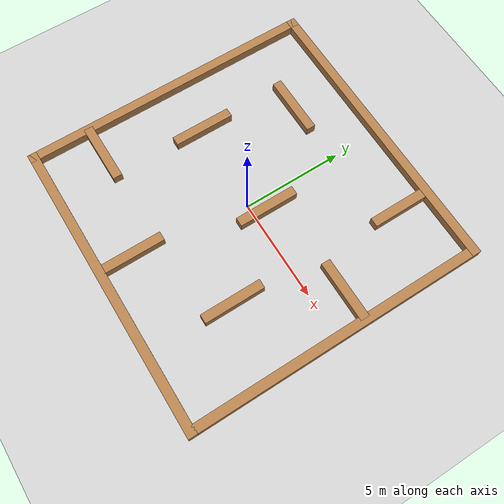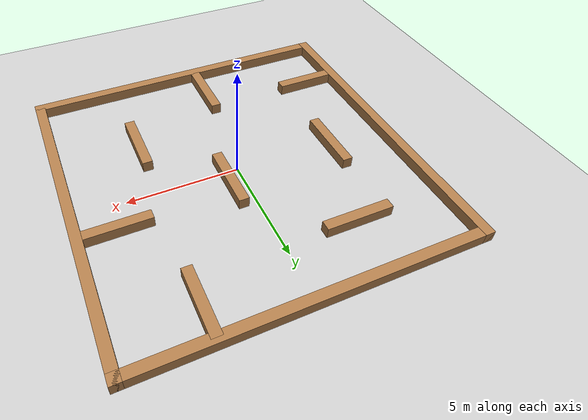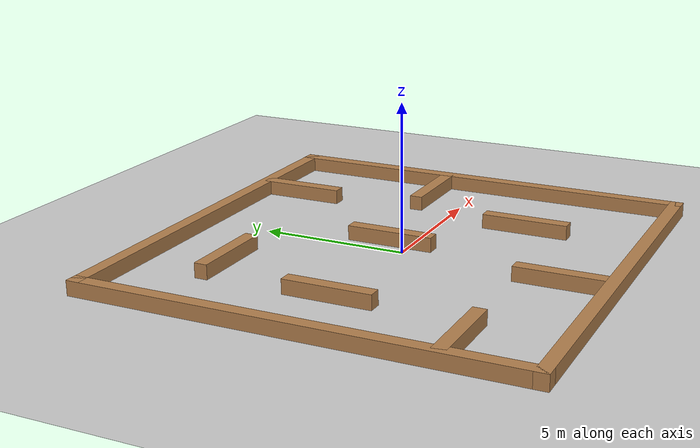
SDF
<sdf version="1.7">
 <world name="default">
  <light name="sun" type="directional">
   <pose>0 0 10 0 -0 0</pose>
   <diffuse>0.8 0.8 0.8 1</diffuse>
   <specular>0.2 0.2 0.2 1</specular>
   <attenuation>
    <range>1000</range>
    <constant>0.9</constant>
    <linear>0.01</linear>
    <quadratic>0.001</quadratic>
   </attenuation>
   <direction>-0.5 0.1 -0.9</direction>
   <spot><inner_angle>0</inner_angle><outer_angle>0</outer_angle><falloff>0</falloff></spot>
  </light>
  <model name="ground_plane">
   <static>1</static>
   <link name="link">
    <collision name="collision">
     <geometry><plane><normal>0 0 1</normal><size>300 300</size></plane></geometry>
     <surface><friction><ode><mu>15</mu><mu2>15</mu2></ode></friction></surface>
    </collision>
    <visual name="visual">
     <cast_shadows>0</cast_shadows>
     <geometry><plane><normal>0 0 1</normal><size>300 300</size></plane></geometry>
     <material>
      <script><uri>file://media/materials/scripts/gazebo.material</uri><name>Gazebo/Grey</name></script>
     </material>
    </visual>
   </link>
  </model>
  <physics type="ode">
   <max_step_size>0.01</max_step_size>
   <real_time_factor>1.0</real_time_factor>
   <real_time_update_rate>120</real_time_update_rate>
   <gravity>0 0 -9.8</gravity>
  </physics>
  <model name="turtlebot3_plaza">
   <link name="Wall_0">
    <collision name="Wall_0_Collision">
     <geometry><box><size>15 0.44999999999999996 0.5</size></box></geometry>
     <pose>0 0 0.25 0 -0 0</pose>
    </collision>
    <visual name="Wall_0_Visual">
     <pose>0 0 0.25 0 -0 0</pose>
     <geometry><box><size>15 0.44999999999999996 0.5</size></box></geometry>
     <material>
      <script><uri>file://media/materials/scripts/gazebo.material</uri><name>Gazebo/Wood</name></script>
      <ambient>1 1 1 1</ambient>
     </material>
    </visual>
    <pose>-7.2749999999999995 0 0 0 -0 1.5708</pose>
   </link>
   <link name="Wall_11">
    <collision name="Wall_11_Collision">
     <geometry><box><size>3 0.44999999999999996 0.5</size></box></geometry>
     <pose>0 0 0.25 0 -0 0</pose>
    </collision>
    <visual name="Wall_11_Visual">
     <pose>0 0 0.25 0 -0 0</pose>
     <geometry><box><size>3 0.44999999999999996 0.5</size></box></geometry>
     <material>
      <script><uri>file://media/materials/scripts/gazebo.material</uri><name>Gazebo/Wood</name></script>
      <ambient>1 1 1 1</ambient>
     </material>
    </visual>
    <pose>-5.811 -4.401 0 0 -0 0</pose>
   </link>
   <link name="Wall_13">
    <collision name="Wall_13_Collision">
     <geometry><box><size>3 0.44999999999999996 0.5</size></box></geometry>
     <pose>0 0 0.25 0 -0 0</pose>
    </collision>
    <visual name="Wall_13_Visual">
     <pose>0 0 0.25 0 -0 0</pose>
     <geometry><box><size>3 0.44999999999999996 0.5</size></box></geometry>
     <material>
      <script><uri>file://media/materials/scripts/gazebo.material</uri><name>Gazebo/Wood</name></script>
      <ambient>1 1 1 1</ambient>
     </material>
    </visual>
    <pose>-0.66 -5.598000000000001 0 0 0 -1.5708</pose>
   </link>
   <link name="Wall_15">
    <collision name="Wall_15_Collision">
     <geometry><box><size>3 0.44999999999999996 0.5</size></box></geometry>
     <pose>0 0 0.25 0 -0 0</pose>
    </collision>
    <visual name="Wall_15_Visual">
     <pose>0 0 0.25 0 -0 0</pose>
     <geometry><box><size>3 0.44999999999999996 0.5</size></box></geometry>
     <material>
      <script><uri>file://media/materials/scripts/gazebo.material</uri><name>Gazebo/Wood</name></script>
      <ambient>1 1 1 1</ambient>
     </material>
    </visual>
    <pose>3.585 -3.0060000000000002 0 0 -0 1.5708</pose>
   </link>
   <link name="Wall_17">
    <collision name="Wall_17_Collision">
     <geometry><box><size>3 0.44999999999999996 0.5</size></box></geometry>
     <pose>0 0 0.25 0 -0 0</pose>
    </collision>
    <visual name="Wall_17_Visual">
     <pose>0 0 0.25 0 -0 0</pose>
     <geometry><box><size>3 0.44999999999999996 0.5</size></box></geometry>
     <material>
      <script><uri>file://media/materials/scripts/gazebo.material</uri><name>Gazebo/Wood</name></script>
      <ambient>1 1 1 1</ambient>
     </material>
    </visual>
    <pose>3.864 5.79 0 0 0 -1.5708</pose>
   </link>
   <link name="Wall_19">
    <collision name="Wall_19_Collision">
     <geometry><box><size>3 0.44999999999999996 0.5</size></box></geometry>
     <pose>0 0 0.25 0 -0 0</pose>
    </collision>
    <visual name="Wall_19_Visual">
     <pose>0 0 0.25 0 -0 0</pose>
     <geometry><box><size>3 0.44999999999999996 0.5</size></box></geometry>
     <material>
      <script><uri>file://media/materials/scripts/gazebo.material</uri><name>Gazebo/Wood</name></script>
      <ambient>1 1 1 1</ambient>
     </material>
    </visual>
    <pose>5.733840000000001 1.3896 0 0 -0 0</pose>
   </link>
   <link name="Wall_2">
    <collision name="Wall_2_Collision">
     <geometry><box><size>15 0.44999999999999996 0.5</size></box></geometry>
     <pose>0 0 0.25 0 -0 0</pose>
    </collision>
    <visual name="Wall_2_Visual">
     <pose>0 0 0.25 0 -0 0</pose>
     <geometry><box><size>15 0.44999999999999996 0.5</size></box></geometry>
     <material>
      <script><uri>file://media/materials/scripts/gazebo.material</uri><name>Gazebo/Wood</name></script>
      <ambient>1 1 1 1</ambient>
     </material>
    </visual>
    <pose>0 7.2749999999999995 0 0 -0 0</pose>
   </link>
   <link name="Wall_21">
    <collision name="Wall_21_Collision">
     <geometry><box><size>3 0.44999999999999996 0.5</size></box></geometry>
     <pose>0 0 0.25 0 -0 0</pose>
    </collision>
    <visual name="Wall_21_Visual">
     <pose>0 0 0.25 0 -0 0</pose>
     <geometry><box><size>3 0.44999999999999996 0.5</size></box></geometry>
     <material>
      <script><uri>file://media/materials/scripts/gazebo.material</uri><name>Gazebo/Wood</name></script>
      <ambient>1 1 1 1</ambient>
     </material>
    </visual>
    <pose>0.612 0.645 0 0 0 -1.5708</pose>
   </link>
   <link name="Wall_3">
    <collision name="Wall_3_Collision">
     <geometry><box><size>15 0.44999999999999996 0.5</size></box></geometry>
     <pose>0 0 0.25 0 -0 0</pose>
    </collision>
    <visual name="Wall_3_Visual">
     <pose>0 0 0.25 0 -0 0</pose>
     <geometry><box><size>15 0.44999999999999996 0.5</size></box></geometry>
     <material>
      <script><uri>file://media/materials/scripts/gazebo.material</uri><name>Gazebo/Wood</name></script>
      <ambient>1 1 1 1</ambient>
     </material>
    </visual>
    <pose>7.2749999999999995 0 0 0 0 -1.5708</pose>
   </link>
   <link name="Wall_4">
    <collision name="Wall_4_Collision">
     <geometry><box><size>15 0.44999999999999996 0.5</size></box></geometry>
     <pose>0 0 0.25 0 -0 0</pose>
    </collision>
    <visual name="Wall_4_Visual">
     <pose>0 0 0.25 0 -0 0</pose>
     <geometry><box><size>15 0.44999999999999996 0.5</size></box></geometry>
     <material>
      <script><uri>file://media/materials/scripts/gazebo.material</uri><name>Gazebo/Wood</name></script>
      <ambient>1 1 1 1</ambient>
     </material>
    </visual>
    <pose>0 -7.2749999999999995 0 0 -0 3.14159</pose>
   </link>
   <link name="Wall_7">
    <collision name="Wall_7_Collision">
     <geometry><box><size>3 0.44999999999999996 0.5</size></box></geometry>
     <pose>0 0 0.25 0 -0 0</pose>
    </collision>
    <visual name="Wall_7_Visual">
     <pose>0 0 0.25 0 -0 0</pose>
     <geometry><box><size>3 0.44999999999999996 0.5</size></box></geometry>
     <material>
      <script><uri>file://media/materials/scripts/gazebo.material</uri><name>Gazebo/Wood</name></script>
      <ambient>1 1 1 1</ambient>
     </material>
    </visual>
    <pose>-3.192 4.644 0 0 -0 0</pose>
   </link>
   <link name="Wall_9">
    <collision name="Wall_9_Collision">
     <geometry><box><size>3 0.44999999999999996 0.5</size></box></geometry>
     <pose>0 0 0.25 0 -0 0</pose>
    </collision>
    <visual name="Wall_9_Visual">
     <pose>0 0 0.25 0 -0 0</pose>
     <geometry><box><size>3 0.44999999999999996 0.5</size></box></geometry>
     <material>
      <script><uri>file://media/materials/scripts/gazebo.material</uri><name>Gazebo/Wood</name></script>
      <ambient>1 1 1 1</ambient>
     </material>
    </visual>
    <pose>-4.506 0.276 0 0 0 -1.5708</pose>
   </link>
   <static>1</static>
  </model>
  <scene><ambient>0.4 0.4 0.4 1</ambient><background>0.7 0.7 0.7 1</background><shadows>1</shadows></scene>
  <gravity>0 0 -9.8</gravity>
  <magnetic_field>6e-06 2.3e-05 -4.2e-05</magnetic_field>
  <atmosphere type="adiabatic"/>
  <spherical_coordinates>
   <surface_model>EARTH_WGS84</surface_model>
   <latitude_deg>0</latitude_deg>
   <longitude_deg>0</longitude_deg>
   <elevation>0</elevation>
   <heading_deg>0</heading_deg>
  </spherical_coordinates>
 </world>
</sdf>
